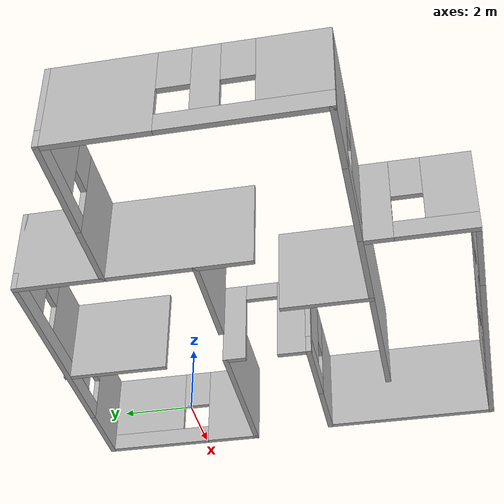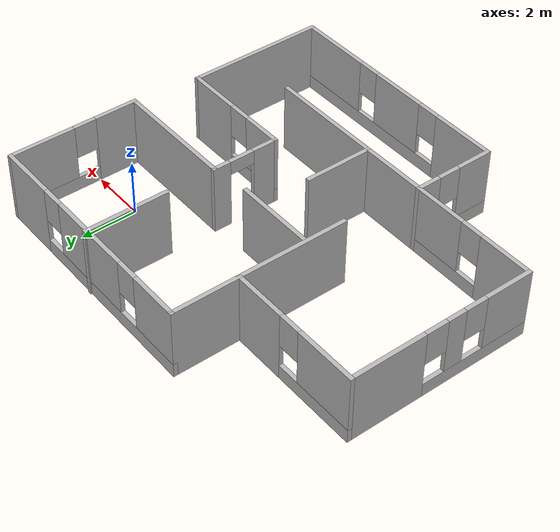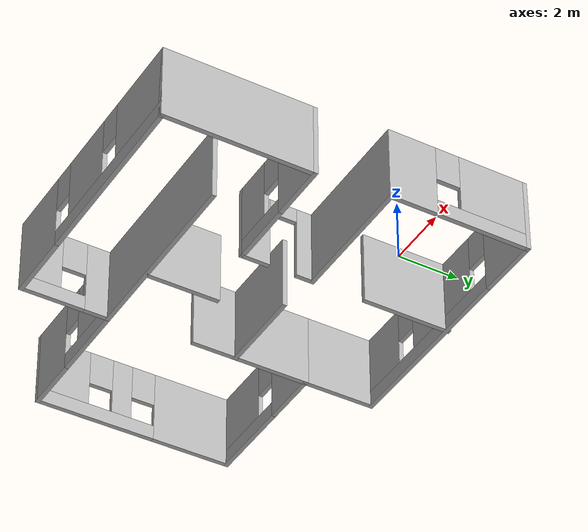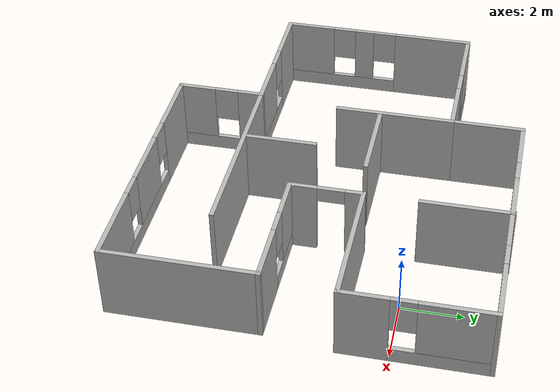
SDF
<?xml version='1.0'?>
<sdf version='1.7'>
  <model name='room'>
    <pose>-4.625 -2.82814 0 0 -0 0</pose>
    <link name='Wall_0'>
      <collision name='Wall_0_Collision'>
        <geometry>
          <box>
            <size>4.5 0.15 2.5</size>
          </box>
        </geometry>
        <pose>0 0 1.25 0 -0 0</pose>
      </collision>
      <visual name='Wall_0_Visual'>
        <pose>0 0 1.25 0 -0 0</pose>
        <geometry>
          <box>
            <size>4.5 0.15 2.5</size>
          </box>
        </geometry>
          <ambient>1 1 1 1</ambient>
        <meta>
          <layer>0</layer>
        </meta>
      </visual>
      <pose>4.55 1.27814 0 0 -0 0</pose>
    </link>
    <link name='Wall_1'>
      <pose>6.725 3.57814 0 0 -0 1.5708</pose>
      <visual name='Wall_1_Visual_0'>
        <pose>-1.57759 0 1.25 0 -0 0</pose>
        <geometry>
          <box>
            <size>1.59481 0.15 2.5</size>
          </box>
        </geometry>
          <ambient>1 1 1 1</ambient>
        <meta>
          <layer>0</layer>
        </meta>
      </visual>
      <collision name='Wall_1_Collision_0'>
        <geometry>
          <box>
            <size>1.59481 0.15 2.5</size>
          </box>
        </geometry>
        <pose>-1.57759 0 1.25 0 -0 0</pose>
      </collision>
      <visual name='Wall_1_Visual_1'>
        <pose>0.797406 0 0.25 0 -0 0</pose>
        <geometry>
          <box>
            <size>3.15519 0.15 0.5</size>
          </box>
        </geometry>
          <ambient>1 1 1 1</ambient>
        <meta>
          <layer>0</layer>
        </meta>
      </visual>
      <collision name='Wall_1_Collision_1'>
        <geometry>
          <box>
            <size>3.15519 0.15 0.5</size>
          </box>
        </geometry>
        <pose>0.797406 0 0.25 0 -0 0</pose>
      </collision>
      <visual name='Wall_1_Visual_2'>
        <pose>1.19741 0 1.5 0 -0 0</pose>
        <geometry>
          <box>
            <size>2.35519 0.15 2</size>
          </box>
        </geometry>
          <ambient>1 1 1 1</ambient>
        <meta>
          <layer>0</layer>
        </meta>
      </visual>
      <collision name='Wall_1_Collision_2'>
        <geometry>
          <box>
            <size>2.35519 0.15 2</size>
          </box>
        </geometry>
        <pose>1.19741 0 1.5 0 -0 0</pose>
      </collision>
      <visual name='Wall_1_Visual_3'>
        <pose>-0.380187 0 1.9 0 -0 0</pose>
        <geometry>
          <box>
            <size>0.8 0.15 1.2</size>
          </box>
        </geometry>
          <ambient>1 1 1 1</ambient>
        <meta>
          <layer>0</layer>
        </meta>
      </visual>
      <collision name='Wall_1_Collision_3'>
        <geometry>
          <box>
            <size>0.8 0.15 1.2</size>
          </box>
        </geometry>
        <pose>-0.380187 0 1.9 0 -0 0</pose>
      </collision>
    </link>
    <link name='Wall_10'>
      <pose>4.425 -1.07186 0 0 -0 3.14159</pose>
      <visual name='Wall_10_Visual_0'>
        <pose>-1.13522 0 1.25 0 -0 0</pose>
        <geometry>
          <box>
            <size>1.97956 0.15 2.5</size>
          </box>
        </geometry>
          <ambient>1 1 1 1</ambient>
        <meta>
          <layer>0</layer>
        </meta>
      </visual>
      <collision name='Wall_10_Collision_0'>
        <geometry>
          <box>
            <size>1.97956 0.15 2.5</size>
          </box>
        </geometry>
        <pose>-1.13522 0 1.25 0 -0 0</pose>
      </collision>
      <visual name='Wall_10_Visual_1'>
        <pose>0.989779 0 0.25 0 -0 0</pose>
        <geometry>
          <box>
            <size>2.27044 0.15 0.5</size>
          </box>
        </geometry>
          <ambient>1 1 1 1</ambient>
        <meta>
          <layer>0</layer>
        </meta>
      </visual>
      <collision name='Wall_10_Collision_1'>
        <geometry>
          <box>
            <size>2.27044 0.15 0.5</size>
          </box>
        </geometry>
        <pose>0.989779 0 0.25 0 -0 0</pose>
      </collision>
      <visual name='Wall_10_Visual_2'>
        <pose>1.38978 0 1.5 0 -0 0</pose>
        <geometry>
          <box>
            <size>1.47044 0.15 2</size>
          </box>
        </geometry>
          <ambient>1 1 1 1</ambient>
        <meta>
          <layer>0</layer>
        </meta>
      </visual>
      <collision name='Wall_10_Collision_2'>
        <geometry>
          <box>
            <size>1.47044 0.15 2</size>
          </box>
        </geometry>
        <pose>1.38978 0 1.5 0 -0 0</pose>
      </collision>
      <visual name='Wall_10_Visual_3'>
        <pose>0.254559 0 1.9 0 -0 0</pose>
        <geometry>
          <box>
            <size>0.8 0.15 1.2</size>
          </box>
        </geometry>
          <ambient>1 1 1 1</ambient>
        <meta>
          <layer>0</layer>
        </meta>
      </visual>
      <collision name='Wall_10_Collision_3'>
        <geometry>
          <box>
            <size>0.8 0.15 1.2</size>
          </box>
        </geometry>
        <pose>0.254559 0 1.9 0 -0 0</pose>
      </collision>
    </link>
    <link name='Wall_12'>
      <pose>2.375 0.103141 0 0 -0 1.5708</pose>
      <visual name='Wall_12_Visual_0'>
        <pose>-0.77485 0 1.25 0 -0 0</pose>
        <geometry>
          <box>
            <size>0.950299 0.15 2.5</size>
          </box>
        </geometry>
          <ambient>1 1 1 1</ambient>
        <meta>
          <layer>0</layer>
        </meta>
      </visual>
      <collision name='Wall_12_Collision_0'>
        <geometry>
          <box>
            <size>0.950299 0.15 2.5</size>
          </box>
        </geometry>
        <pose>-0.77485 0 1.25 0 -0 0</pose>
      </collision>
      <visual name='Wall_12_Visual_1'>
        <pose>0.92515 0 1.25 0 -0 0</pose>
        <geometry>
          <box>
            <size>0.649701 0.15 2.5</size>
          </box>
        </geometry>
          <ambient>1 1 1 1</ambient>
        <meta>
          <layer>0</layer>
        </meta>
      </visual>
      <collision name='Wall_12_Collision_1'>
        <geometry>
          <box>
            <size>0.649701 0.15 2.5</size>
          </box>
        </geometry>
        <pose>0.92515 0 1.25 0 -0 0</pose>
      </collision>
      <visual name='Wall_12_Visual_2'>
        <pose>0.150299 0 2.25 0 -0 0</pose>
        <geometry>
          <box>
            <size>0.9 0.15 0.5</size>
          </box>
        </geometry>
          <ambient>1 1 1 1</ambient>
        <meta>
          <layer>0</layer>
        </meta>
      </visual>
      <collision name='Wall_12_Collision_2'>
        <geometry>
          <box>
            <size>0.9 0.15 0.5</size>
          </box>
        </geometry>
        <pose>0.150299 0 2.25 0 -0 0</pose>
      </collision>
    </link>
    <link name='Wall_14'>
      <collision name='Wall_14_Collision'>
        <geometry>
          <box>
            <size>4 0.15 2.5</size>
          </box>
        </geometry>
        <pose>0 0 1.25 0 -0 0</pose>
      </collision>
      <visual name='Wall_14_Visual'>
        <pose>0 0 1.25 0 -0 0</pose>
        <geometry>
          <box>
            <size>4 0.15 2.5</size>
          </box>
        </geometry>
          <ambient>1 1 1 1</ambient>
        <meta>
          <layer>0</layer>
        </meta>
      </visual>
      <pose>-1.875 1.60314 0 0 -0 -1.5708</pose>
    </link>
    <link name='Wall_16'>
      <collision name='Wall_16_Collision'>
        <geometry>
          <box>
            <size>3 0.15 2.5</size>
          </box>
        </geometry>
        <pose>0 0 1.25 0 -0 0</pose>
      </collision>
      <visual name='Wall_16_Visual'>
        <pose>0 0 1.25 0 -0 0</pose>
        <geometry>
          <box>
            <size>3 0.15 2.5</size>
          </box>
        </geometry>
          <ambient>1 1 1 1</ambient>
        <meta>
          <layer>0</layer>
        </meta>
      </visual>
      <pose>2.38903 4.49686 0 0 -0 -1.5708</pose>
    </link>
    <link name='Wall_18'>
      <collision name='Wall_18_Collision'>
        <geometry>
          <box>
            <size>6.5 0.15 2.5</size>
          </box>
        </geometry>
        <pose>0 0 1.25 0 -0 0</pose>
      </collision>
      <visual name='Wall_18_Visual'>
        <pose>0 0 1.25 0 -0 0</pose>
        <geometry>
          <box>
            <size>6.5 0.15 2.5</size>
          </box>
        </geometry>
          <ambient>1 1 1 1</ambient>
        <meta>
          <layer>0</layer>
        </meta>
      </visual>
      <pose>1.05 -3.07186 0 0 -0 0</pose>
    </link>
    <link name='Wall_2'>
      <pose>2.425 5.87814 0 0 -0 3.14159</pose>
      <visual name='Wall_2_Visual_0'>
        <pose>-3.30712 0 1.25 0 -0 0</pose>
        <geometry>
          <box>
            <size>2.13576 0.15 2.5</size>
          </box>
        </geometry>
          <ambient>1 1 1 1</ambient>
        <meta>
          <layer>0</layer>
        </meta>
      </visual>
      <collision name='Wall_2_Collision_0'>
        <geometry>
          <box>
            <size>2.13576 0.15 2.5</size>
          </box>
        </geometry>
        <pose>-3.30712 0 1.25 0 -0 0</pose>
      </collision>
      <visual name='Wall_2_Visual_1'>
        <pose>1.06788 0 0.25 0 -0 0</pose>
        <geometry>
          <box>
            <size>6.61424 0.15 0.5</size>
          </box>
        </geometry>
          <ambient>1 1 1 1</ambient>
        <meta>
          <layer>0</layer>
        </meta>
      </visual>
      <collision name='Wall_2_Collision_1'>
        <geometry>
          <box>
            <size>6.61424 0.15 0.5</size>
          </box>
        </geometry>
        <pose>1.06788 0 0.25 0 -0 0</pose>
      </collision>
      <visual name='Wall_2_Visual_2'>
        <pose>0.145143 0 1.5 0 -0 0</pose>
        <geometry>
          <box>
            <size>3.16877 0.15 2</size>
          </box>
        </geometry>
          <ambient>1 1 1 1</ambient>
        <meta>
          <layer>0</layer>
        </meta>
      </visual>
      <collision name='Wall_2_Collision_2'>
        <geometry>
          <box>
            <size>3.16877 0.15 2</size>
          </box>
        </geometry>
        <pose>0.145143 0 1.5 0 -0 0</pose>
      </collision>
      <visual name='Wall_2_Visual_3'>
        <pose>3.45226 0 1.5 0 -0 0</pose>
        <geometry>
          <box>
            <size>1.84547 0.15 2</size>
          </box>
        </geometry>
          <ambient>1 1 1 1</ambient>
        <meta>
          <layer>0</layer>
        </meta>
      </visual>
      <collision name='Wall_2_Collision_3'>
        <geometry>
          <box>
            <size>1.84547 0.15 2</size>
          </box>
        </geometry>
        <pose>3.45226 0 1.5 0 -0 0</pose>
      </collision>
      <visual name='Wall_2_Visual_4'>
        <pose>-1.83924 0 1.9 0 -0 0</pose>
        <geometry>
          <box>
            <size>0.8 0.15 1.2</size>
          </box>
        </geometry>
          <ambient>1 1 1 1</ambient>
        <meta>
          <layer>0</layer>
        </meta>
      </visual>
      <collision name='Wall_2_Collision_4'>
        <geometry>
          <box>
            <size>0.8 0.15 1.2</size>
          </box>
        </geometry>
        <pose>-1.83924 0 1.9 0 -0 0</pose>
      </collision>
      <visual name='Wall_2_Visual_5'>
        <pose>2.12953 0 1.9 0 -0 0</pose>
        <geometry>
          <box>
            <size>0.8 0.15 1.2</size>
          </box>
        </geometry>
          <ambient>1 1 1 1</ambient>
        <meta>
          <layer>0</layer>
        </meta>
      </visual>
      <collision name='Wall_2_Collision_5'>
        <geometry>
          <box>
            <size>0.8 0.15 1.2</size>
          </box>
        </geometry>
        <pose>2.12953 0 1.9 0 -0 0</pose>
      </collision>
    </link>
    <link name='Wall_20'>
      <collision name='Wall_20_Collision'>
        <geometry>
          <box>
            <size>3 0.15 2.5</size>
          </box>
        </geometry>
        <pose>0 0 1.25 0 -0 0</pose>
      </collision>
      <visual name='Wall_20_Visual'>
        <pose>0 0 1.25 0 -0 0</pose>
        <geometry>
          <box>
            <size>3 0.15 2.5</size>
          </box>
        </geometry>
          <ambient>1 1 1 1</ambient>
        <meta>
          <layer>0</layer>
        </meta>
      </visual>
      <pose>-0.433206 1.10833 0 0 -0 0</pose>
    </link>
    <link name='Wall_22'>
      <collision name='Wall_22_Collision'>
        <geometry>
          <box>
            <size>2.5 0.15 2.5</size>
          </box>
        </geometry>
        <pose>0 0 1.25 0 -0 0</pose>
      </collision>
      <visual name='Wall_22_Visual'>
        <pose>0 0 1.25 0 -0 0</pose>
        <geometry>
          <box>
            <size>2.5 0.15 2.5</size>
          </box>
        </geometry>
          <ambient>1 1 1 1</ambient>
        <meta>
          <layer>0</layer>
        </meta>
      </visual>
      <pose>0.230018 -1.89312 0 0 -0 1.5708</pose>
    </link>
    <link name='Wall_3'>
      <collision name='Wall_3_Collision'>
        <geometry>
          <box>
            <size>2.5 0.15 2.5</size>
          </box>
        </geometry>
        <pose>0 0 1.25 0 -0 0</pose>
      </collision>
      <visual name='Wall_3_Visual'>
        <pose>0 0 1.25 0 -0 0</pose>
        <geometry>
          <box>
            <size>2.5 0.15 2.5</size>
          </box>
        </geometry>
          <ambient>1 1 1 1</ambient>
        <meta>
          <layer>0</layer>
        </meta>
      </visual>
      <pose>-1.875 4.70314 0 0 -0 -1.5708</pose>
    </link>
    <link name='Wall_4'>
      <pose>-4.3 3.52814 0 0 -0 3.14159</pose>
      <visual name='Wall_4_Visual_0'>
        <pose>-1.50396 0 1.25 0 -0 0</pose>
        <geometry>
          <box>
            <size>1.99209 0.15 2.5</size>
          </box>
        </geometry>
          <ambient>1 1 1 1</ambient>
        <meta>
          <layer>0</layer>
        </meta>
      </visual>
      <collision name='Wall_4_Collision_0'>
        <geometry>
          <box>
            <size>1.99209 0.15 2.5</size>
          </box>
        </geometry>
        <pose>-1.50396 0 1.25 0 -0 0</pose>
      </collision>
      <visual name='Wall_4_Visual_1'>
        <pose>0.996043 0 0.25 0 -0 0</pose>
        <geometry>
          <box>
            <size>3.00791 0.15 0.5</size>
          </box>
        </geometry>
          <ambient>1 1 1 1</ambient>
        <meta>
          <layer>0</layer>
        </meta>
      </visual>
      <collision name='Wall_4_Collision_1'>
        <geometry>
          <box>
            <size>3.00791 0.15 0.5</size>
          </box>
        </geometry>
        <pose>0.996043 0 0.25 0 -0 0</pose>
      </collision>
      <visual name='Wall_4_Visual_2'>
        <pose>1.39604 0 1.5 0 -0 0</pose>
        <geometry>
          <box>
            <size>2.20791 0.15 2</size>
          </box>
        </geometry>
          <ambient>1 1 1 1</ambient>
        <meta>
          <layer>0</layer>
        </meta>
      </visual>
      <collision name='Wall_4_Collision_2'>
        <geometry>
          <box>
            <size>2.20791 0.15 2</size>
          </box>
        </geometry>
        <pose>1.39604 0 1.5 0 -0 0</pose>
      </collision>
      <visual name='Wall_4_Visual_3'>
        <pose>-0.107913 0 1.9 0 -0 0</pose>
        <geometry>
          <box>
            <size>0.8 0.15 1.2</size>
          </box>
        </geometry>
          <ambient>1 1 1 1</ambient>
        <meta>
          <layer>0</layer>
        </meta>
      </visual>
      <collision name='Wall_4_Collision_3'>
        <geometry>
          <box>
            <size>0.8 0.15 1.2</size>
          </box>
        </geometry>
        <pose>-0.107913 0 1.9 0 -0 0</pose>
      </collision>
    </link>
    <link name='Wall_5'>
      <pose>-6.725 0.228141 0 0 -0 -1.5708</pose>
      <visual name='Wall_5_Visual_0'>
        <pose>-2.01057 0 1.25 0 -0 0</pose>
        <geometry>
          <box>
            <size>2.72885 0.15 2.5</size>
          </box>
        </geometry>
          <ambient>1 1 1 1</ambient>
        <meta>
          <layer>0</layer>
        </meta>
      </visual>
      <collision name='Wall_5_Collision_0'>
        <geometry>
          <box>
            <size>2.72885 0.15 2.5</size>
          </box>
        </geometry>
        <pose>-2.01057 0 1.25 0 -0 0</pose>
      </collision>
      <visual name='Wall_5_Visual_1'>
        <pose>1.36443 0 0.25 0 -0 0</pose>
        <geometry>
          <box>
            <size>4.02115 0.15 0.5</size>
          </box>
        </geometry>
          <ambient>1 1 1 1</ambient>
        <meta>
          <layer>0</layer>
        </meta>
      </visual>
      <collision name='Wall_5_Collision_1'>
        <geometry>
          <box>
            <size>4.02115 0.15 0.5</size>
          </box>
        </geometry>
        <pose>1.36443 0 0.25 0 -0 0</pose>
      </collision>
      <visual name='Wall_5_Visual_2'>
        <pose>0.493131 0 1.5 0 -0 0</pose>
        <geometry>
          <box>
            <size>0.67856 0.15 2</size>
          </box>
        </geometry>
          <ambient>1 1 1 1</ambient>
        <meta>
          <layer>0</layer>
        </meta>
      </visual>
      <collision name='Wall_5_Collision_2'>
        <geometry>
          <box>
            <size>0.67856 0.15 2</size>
          </box>
        </geometry>
        <pose>0.493131 0 1.5 0 -0 0</pose>
      </collision>
      <visual name='Wall_5_Visual_3'>
        <pose>2.50371 0 1.5 0 -0 0</pose>
        <geometry>
          <box>
            <size>1.74259 0.15 2</size>
          </box>
        </geometry>
          <ambient>1 1 1 1</ambient>
        <meta>
          <layer>0</layer>
        </meta>
      </visual>
      <collision name='Wall_5_Collision_3'>
        <geometry>
          <box>
            <size>1.74259 0.15 2</size>
          </box>
        </geometry>
        <pose>2.50371 0 1.5 0 -0 0</pose>
      </collision>
      <visual name='Wall_5_Visual_4'>
        <pose>-0.246149 0 1.9 0 -0 0</pose>
        <geometry>
          <box>
            <size>0.8 0.15 1.2</size>
          </box>
        </geometry>
          <ambient>1 1 1 1</ambient>
        <meta>
          <layer>0</layer>
        </meta>
      </visual>
      <collision name='Wall_5_Collision_4'>
        <geometry>
          <box>
            <size>0.8 0.15 1.2</size>
          </box>
        </geometry>
        <pose>-0.246149 0 1.9 0 -0 0</pose>
      </collision>
      <visual name='Wall_5_Visual_5'>
        <pose>1.23241 0 1.9 0 -0 0</pose>
        <geometry>
          <box>
            <size>0.8 0.15 1.2</size>
          </box>
        </geometry>
          <ambient>1 1 1 1</ambient>
        <meta>
          <layer>0</layer>
        </meta>
      </visual>
      <collision name='Wall_5_Collision_5'>
        <geometry>
          <box>
            <size>0.8 0.15 1.2</size>
          </box>
        </geometry>
        <pose>1.23241 0 1.9 0 -0 0</pose>
      </collision>
    </link>
    <link name='Wall_6'>
      <pose>-4.425 -3.07186 0 0 -0 0</pose>
      <visual name='Wall_6_Visual_0'>
        <pose>-1.38777 0 1.25 0 -0 0</pose>
        <geometry>
          <box>
            <size>1.97446 0.15 2.5</size>
          </box>
        </geometry>
          <ambient>1 1 1 1</ambient>
        <meta>
          <layer>0</layer>
        </meta>
      </visual>
      <collision name='Wall_6_Collision_0'>
        <geometry>
          <box>
            <size>1.97446 0.15 2.5</size>
          </box>
        </geometry>
        <pose>-1.38777 0 1.25 0 -0 0</pose>
      </collision>
      <visual name='Wall_6_Visual_1'>
        <pose>0.987228 0 0.25 0 -0 0</pose>
        <geometry>
          <box>
            <size>2.77554 0.15 0.5</size>
          </box>
        </geometry>
          <ambient>1 1 1 1</ambient>
        <meta>
          <layer>0</layer>
        </meta>
      </visual>
      <collision name='Wall_6_Collision_1'>
        <geometry>
          <box>
            <size>2.77554 0.15 0.5</size>
          </box>
        </geometry>
        <pose>0.987228 0 0.25 0 -0 0</pose>
      </collision>
      <visual name='Wall_6_Visual_2'>
        <pose>1.38723 0 1.5 0 -0 0</pose>
        <geometry>
          <box>
            <size>1.97554 0.15 2</size>
          </box>
        </geometry>
          <ambient>1 1 1 1</ambient>
        <meta>
          <layer>0</layer>
        </meta>
      </visual>
      <collision name='Wall_6_Collision_2'>
        <geometry>
          <box>
            <size>1.97554 0.15 2</size>
          </box>
        </geometry>
        <pose>1.38723 0 1.5 0 -0 0</pose>
      </collision>
      <visual name='Wall_6_Visual_3'>
        <pose>-0.000544 0 1.9 0 -0 0</pose>
        <geometry>
          <box>
            <size>0.8 0.15 1.2</size>
          </box>
        </geometry>
          <ambient>1 1 1 1</ambient>
        <meta>
          <layer>0</layer>
        </meta>
      </visual>
      <collision name='Wall_6_Collision_3'>
        <geometry>
          <box>
            <size>0.8 0.15 1.2</size>
          </box>
        </geometry>
        <pose>-0.000544 0 1.9 0 -0 0</pose>
      </collision>
    </link>
    <link name='Wall_7'>
      <pose>-2.125 -4.49686 0 0 -0 -1.5708</pose>
      <visual name='Wall_7_Visual_0'>
        <pose>-1.05214 0 1.25 0 -0 0</pose>
        <geometry>
          <box>
            <size>0.895729 0.15 2.5</size>
          </box>
        </geometry>
          <ambient>1 1 1 1</ambient>
        <meta>
          <layer>0</layer>
        </meta>
      </visual>
      <collision name='Wall_7_Collision_0'>
        <geometry>
          <box>
            <size>0.895729 0.15 2.5</size>
          </box>
        </geometry>
        <pose>-1.05214 0 1.25 0 -0 0</pose>
      </collision>
      <visual name='Wall_7_Visual_1'>
        <pose>0.447864 0 0.25 0 -0 0</pose>
        <geometry>
          <box>
            <size>2.10427 0.15 0.5</size>
          </box>
        </geometry>
          <ambient>1 1 1 1</ambient>
        <meta>
          <layer>0</layer>
        </meta>
      </visual>
      <collision name='Wall_7_Collision_1'>
        <geometry>
          <box>
            <size>2.10427 0.15 0.5</size>
          </box>
        </geometry>
        <pose>0.447864 0 0.25 0 -0 0</pose>
      </collision>
      <visual name='Wall_7_Visual_2'>
        <pose>0.847864 0 1.5 0 -0 0</pose>
        <geometry>
          <box>
            <size>1.30427 0.15 2</size>
          </box>
        </geometry>
          <ambient>1 1 1 1</ambient>
        <meta>
          <layer>0</layer>
        </meta>
      </visual>
      <collision name='Wall_7_Collision_2'>
        <geometry>
          <box>
            <size>1.30427 0.15 2</size>
          </box>
        </geometry>
        <pose>0.847864 0 1.5 0 -0 0</pose>
      </collision>
      <visual name='Wall_7_Visual_3'>
        <pose>-0.204271 0 1.9 0 -0 0</pose>
        <geometry>
          <box>
            <size>0.8 0.15 1.2</size>
          </box>
        </geometry>
          <ambient>1 1 1 1</ambient>
        <meta>
          <layer>0</layer>
        </meta>
      </visual>
      <collision name='Wall_7_Collision_3'>
        <geometry>
          <box>
            <size>0.8 0.15 1.2</size>
          </box>
        </geometry>
        <pose>-0.204271 0 1.9 0 -0 0</pose>
      </collision>
    </link>
    <link name='Wall_8'>
      <pose>2.175 -5.92186 0 0 -0 0</pose>
      <visual name='Wall_8_Visual_0'>
        <pose>-3.2051 0 1.25 0 -0 0</pose>
        <geometry>
          <box>
            <size>2.33979 0.15 2.5</size>
          </box>
        </geometry>
          <ambient>1 1 1 1</ambient>
        <meta>
          <layer>0</layer>
        </meta>
      </visual>
      <collision name='Wall_8_Collision_0'>
        <geometry>
          <box>
            <size>2.33979 0.15 2.5</size>
          </box>
        </geometry>
        <pose>-3.2051 0 1.25 0 -0 0</pose>
      </collision>
      <visual name='Wall_8_Visual_1'>
        <pose>1.1699 0 0.25 0 -0 0</pose>
        <geometry>
          <box>
            <size>6.41021 0.15 0.5</size>
          </box>
        </geometry>
          <ambient>1 1 1 1</ambient>
        <meta>
          <layer>0</layer>
        </meta>
      </visual>
      <collision name='Wall_8_Collision_1'>
        <geometry>
          <box>
            <size>6.41021 0.15 0.5</size>
          </box>
        </geometry>
        <pose>1.1699 0 0.25 0 -0 0</pose>
      </collision>
      <visual name='Wall_8_Visual_2'>
        <pose>-0.193626 0 1.5 0 -0 0</pose>
        <geometry>
          <box>
            <size>2.08316 0.15 2</size>
          </box>
        </geometry>
          <ambient>1 1 1 1</ambient>
        <meta>
          <layer>0</layer>
        </meta>
      </visual>
      <collision name='Wall_8_Collision_2'>
        <geometry>
          <box>
            <size>2.08316 0.15 2</size>
          </box>
        </geometry>
        <pose>-0.193626 0 1.5 0 -0 0</pose>
      </collision>
      <visual name='Wall_8_Visual_3'>
        <pose>3.01148 0 1.5 0 -0 0</pose>
        <geometry>
          <box>
            <size>2.72704 0.15 2</size>
          </box>
        </geometry>
          <ambient>1 1 1 1</ambient>
        <meta>
          <layer>0</layer>
        </meta>
      </visual>
      <collision name='Wall_8_Collision_3'>
        <geometry>
          <box>
            <size>2.72704 0.15 2</size>
          </box>
        </geometry>
        <pose>3.01148 0 1.5 0 -0 0</pose>
      </collision>
      <visual name='Wall_8_Visual_4'>
        <pose>-1.63521 0 1.9 0 -0 0</pose>
        <geometry>
          <box>
            <size>0.8 0.15 1.2</size>
          </box>
        </geometry>
          <ambient>1 1 1 1</ambient>
        <meta>
          <layer>0</layer>
        </meta>
      </visual>
      <collision name='Wall_8_Collision_4'>
        <geometry>
          <box>
            <size>0.8 0.15 1.2</size>
          </box>
        </geometry>
        <pose>-1.63521 0 1.9 0 -0 0</pose>
      </collision>
      <visual name='Wall_8_Visual_5'>
        <pose>1.24795 0 1.9 0 -0 0</pose>
        <geometry>
          <box>
            <size>0.8 0.15 1.2</size>
          </box>
        </geometry>
          <ambient>1 1 1 1</ambient>
        <meta>
          <layer>0</layer>
        </meta>
      </visual>
      <collision name='Wall_8_Collision_5'>
        <geometry>
          <box>
            <size>0.8 0.15 1.2</size>
          </box>
        </geometry>
        <pose>1.24795 0 1.9 0 -0 0</pose>
      </collision>
    </link>
    <link name='Wall_9'>
      <collision name='Wall_9_Collision'>
        <geometry>
          <box>
            <size>5 0.15 2.5</size>
          </box>
        </geometry>
        <pose>0 0 1.25 0 -0 0</pose>
      </collision>
      <visual name='Wall_9_Visual'>
        <pose>0 0 1.25 0 -0 0</pose>
        <geometry>
          <box>
            <size>5 0.15 2.5</size>
          </box>
        </geometry>
          <ambient>1 1 1 1</ambient>
        <meta>
          <layer>0</layer>
        </meta>
      </visual>
      <pose>6.475 -3.49686 0 0 -0 1.5708</pose>
    </link>
    <static>1</static>
  </model>
</sdf>
